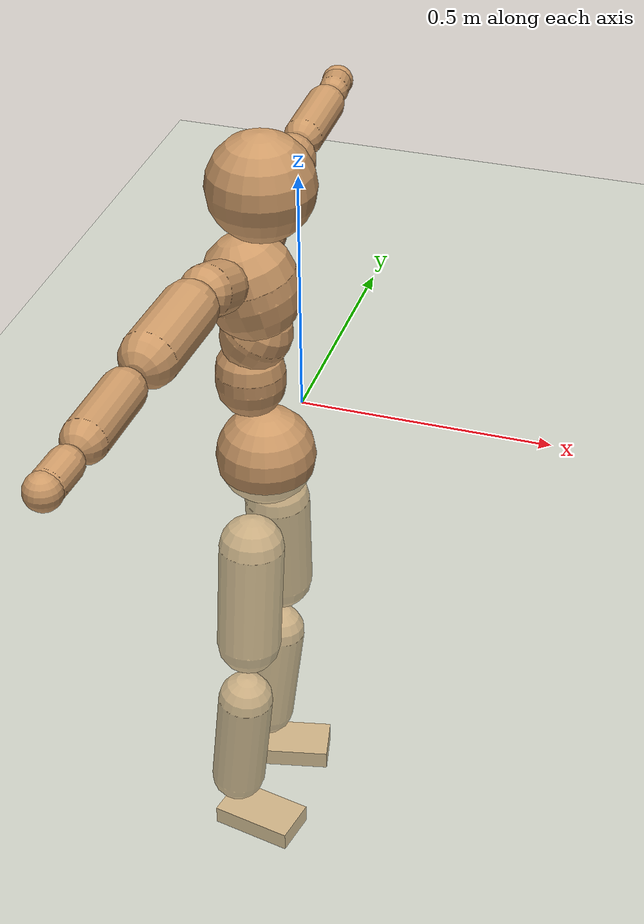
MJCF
<mujoco model="humanoid">
  <compiler coordinate="local"/>
  <default>
    <joint damping="0.0" armature="0.01" stiffness="0.0" limited="true"/>
    <geom conaffinity="1" condim="3" contype="7" margin="0.001" rgba="0.8 0.6 .4 1"/>
  </default>
  <asset>
    <texture type="skybox" builtin="gradient" rgb1=".4 .5 .6" rgb2="0 0 0" width="100" height="100"/>
    <texture builtin="flat" height="1278" mark="cross" markrgb="1 1 1" name="texgeom" random="0.01" rgb1="0.8 0.6 0.4" rgb2="0.8 0.6 0.4" type="cube" width="127"/>
    <texture builtin="checker" height="100" name="texplane" rgb1="0 0 0" rgb2="0.8 0.8 0.8" type="2d" width="100"/>
    <material name="MatPlane" reflectance="0.5" shininess="1" specular="1" texrepeat="60 60" texture="texplane"/>
    <material name="geom" texture="texgeom" texuniform="true"/>
  </asset>
  <worldbody>
    <light cutoff="100" diffuse="1 1 1" dir="-0 0 -1.3" directional="true" exponent="1" pos="0 0 1.3" specular=".1 .1 .1"/>
    <geom conaffinity="1" condim="3" name="floor" pos="0 0 0" rgba="0.8 0.9 0.8 1" size="100 100 .2" type="plane" material="MatPlane"/>
    <body name="Pelvis" pos="-0.0006 -0.217 0.0282">
      <freejoint name="Pelvis"/>
      <geom type="sphere" contype="1" conaffinity="1" density="500" size="0.0950" pos="0.0000 0.0000 0.0000" name="Pelvis"/>
      <body name="L_Hip" pos="-0.008 0.0744 -0.0914">
        <joint name="L_Hip_x" type="hinge" pos="0 0 0" axis="1 0 0" stiffness="800" damping="80" armature="0.02" range="-180.0000 180.0000"/>
        <joint name="L_Hip_y" type="hinge" pos="0 0 0" axis="0 1 0" stiffness="800" damping="80" armature="0.02" range="-180.0000 180.0000"/>
        <joint name="L_Hip_z" type="hinge" pos="0 0 0" axis="0 0 1" stiffness="800" damping="80" armature="0.02" range="-180.0000 180.0000"/>
        <geom type="capsule" contype="1" conaffinity="1" density="500" fromto="-0.0012 0.0062 -0.0733 -0.0047 0.0248 -0.2934" size="0.0639" name="L_Hip"/>
        <body name="L_Knee" pos="-0.0059 0.031 -0.3667">
          <joint name="L_Knee_x" type="hinge" pos="0 0 0" axis="1 0 0" stiffness="800" damping="80" armature="0.02" range="-180.0000 180.0000"/>
          <joint name="L_Knee_y" type="hinge" pos="0 0 0" axis="0 1 0" stiffness="800" damping="80" armature="0.02" range="-180.0000 180.0000"/>
          <joint name="L_Knee_z" type="hinge" pos="0 0 0" axis="0 0 1" stiffness="800" damping="80" armature="0.02" range="-180.0000 180.0000"/>
          <geom type="capsule" contype="1" conaffinity="1" density="500" fromto="-0.0091 -0.0023 -0.0767 -0.0363 -0.0090 -0.3068" size="0.0546" name="L_Knee"/>
          <body name="L_Ankle" pos="-0.0453 -0.0113 -0.3835">
            <joint name="L_Ankle_x" type="hinge" pos="0 0 0" axis="1 0 0" stiffness="800" damping="80" armature="0.02" range="-180.0000 180.0000"/>
            <joint name="L_Ankle_y" type="hinge" pos="0 0 0" axis="0 1 0" stiffness="800" damping="80" armature="0.02" range="-180.0000 180.0000"/>
            <joint name="L_Ankle_z" type="hinge" pos="0 0 0" axis="0 0 1" stiffness="800" damping="80" armature="0.02" range="-180.0000 180.0000"/>
            <geom type="box" contype="1" conaffinity="1" density="500" pos="0.0572 0.0123 -0.0272" size="0.0818 0.0461 0.02" quat="0.9944 0.0000 0.0000 0.1057" name="L_Ankle"/>
            <body name="L_Toe" pos="0.1143 0.0246 -0.0545">
              <joint name="L_Toe_x" type="hinge" pos="0 0 0" axis="1 0 0" stiffness="500" damping="50" armature="0.02" range="-180.0000 180.0000"/>
              <joint name="L_Toe_y" type="hinge" pos="0 0 0" axis="0 1 0" stiffness="500" damping="50" armature="0.02" range="-180.0000 180.0000"/>
              <joint name="L_Toe_z" type="hinge" pos="0 0 0" axis="0 0 1" stiffness="500" damping="50" armature="0.02" range="-180.0000 180.0000"/>
              <geom type="box" contype="1" conaffinity="1" density="500" pos="0.0000 0.0000 0.0271" size="0.0009 0.0023 0.001" quat="0.9937 0.0000 0.0000 0.1121" name="L_Toe"/>
            </body>
          </body>
        </body>
      </body>
      <body name="R_Hip" pos="-0.005 -0.0718 -0.0905">
        <joint name="R_Hip_x" type="hinge" pos="0 0 0" axis="1 0 0" stiffness="800" damping="80" armature="0.02" range="-180.0000 180.0000"/>
        <joint name="R_Hip_y" type="hinge" pos="0 0 0" axis="0 1 0" stiffness="800" damping="80" armature="0.02" range="-180.0000 180.0000"/>
        <joint name="R_Hip_z" type="hinge" pos="0 0 0" axis="0 0 1" stiffness="800" damping="80" armature="0.02" range="-180.0000 180.0000"/>
        <geom type="capsule" contype="1" conaffinity="1" density="500" fromto="-0.0017 -0.0073 -0.0748 -0.0069 -0.0292 -0.2992" size="0.0631" name="R_Hip"/>
        <body name="R_Knee" pos="-0.0086 -0.0366 -0.374">
          <joint name="R_Knee_x" type="hinge" pos="0 0 0" axis="1 0 0" stiffness="800" damping="80" armature="0.02" range="-180.0000 180.0000"/>
          <joint name="R_Knee_y" type="hinge" pos="0 0 0" axis="0 1 0" stiffness="800" damping="80" armature="0.02" range="-180.0000 180.0000"/>
          <joint name="R_Knee_z" type="hinge" pos="0 0 0" axis="0 0 1" stiffness="800" damping="80" armature="0.02" range="-180.0000 180.0000"/>
          <geom type="capsule" contype="1" conaffinity="1" density="500" fromto="-0.0087 0.0027 -0.0768 -0.0350 0.0110 -0.3072" size="0.0548" name="R_Knee"/>
          <body name="R_Ankle" pos="-0.0437 0.0137 -0.384">
            <joint name="R_Ankle_x" type="hinge" pos="0 0 0" axis="1 0 0" stiffness="800" damping="80" armature="0.02" range="-180.0000 180.0000"/>
            <joint name="R_Ankle_y" type="hinge" pos="0 0 0" axis="0 1 0" stiffness="800" damping="80" armature="0.02" range="-180.0000 180.0000"/>
            <joint name="R_Ankle_z" type="hinge" pos="0 0 0" axis="0 0 1" stiffness="800" damping="80" armature="0.02" range="-180.0000 180.0000"/>
            <geom type="box" contype="1" conaffinity="1" density="500" pos="0.0589 -0.0115 -0.0235" size="0.0827 0.0458 0.02" quat="0.9954 0.0000 0.0000 -0.0961" name="R_Ankle"/>
            <body name="R_Toe" pos="0.1178 -0.023 -0.047">
              <joint name="R_Toe_x" type="hinge" pos="0 0 0" axis="1 0 0" stiffness="500" damping="50" armature="0.02" range="-180.0000 180.0000"/>
              <joint name="R_Toe_y" type="hinge" pos="0 0 0" axis="0 1 0" stiffness="500" damping="50" armature="0.02" range="-180.0000 180.0000"/>
              <joint name="R_Toe_z" type="hinge" pos="0 0 0" axis="0 0 1" stiffness="500" damping="50" armature="0.02" range="-180.0000 180.0000"/>
              <geom type="box" contype="1" conaffinity="1" density="500" pos="0.0000 0.0000 0.0253" size="0.0009 0.0023 0.0011" quat="0.9963 0.0000 0.0000 -0.0865" name="R_Toe"/>
            </body>
          </body>
        </body>
      </body>
      <body name="Torso" pos="-0.0232 -0.0025 0.1054">
        <joint name="Torso_x" type="hinge" pos="0 0 0" axis="1 0 0" stiffness="1000" damping="100" armature="0.02" range="-180.0000 180.0000"/>
        <joint name="Torso_y" type="hinge" pos="0 0 0" axis="0 1 0" stiffness="1000" damping="100" armature="0.02" range="-180.0000 180.0000"/>
        <joint name="Torso_z" type="hinge" pos="0 0 0" axis="0 0 1" stiffness="1000" damping="100" armature="0.02" range="-180.0000 180.0000"/>
        <geom type="capsule" contype="1" conaffinity="1" density="500" fromto="-0.0019 0.0022 0.0795 -0.0013 0.0015 0.0530" size="0.065472" name="Torso"/>
        <body name="Spine" pos="-0.0031 0.0037 0.1325">
          <joint name="Spine_x" type="hinge" pos="0 0 0" axis="1 0 0" stiffness="1000" damping="100" armature="0.02" range="-180.0000 180.0000"/>
          <joint name="Spine_y" type="hinge" pos="0 0 0" axis="0 1 0" stiffness="1000" damping="100" armature="0.02" range="-180.0000 180.0000"/>
          <joint name="Spine_z" type="hinge" pos="0 0 0" axis="0 0 1" stiffness="1000" damping="100" armature="0.02" range="-180.0000 180.0000"/>
          <geom type="capsule" contype="1" conaffinity="1" density="500" fromto="0.0172 0.0009 0.0300 0.0115 0.0006 0.0200" size="0.065286" name="Spine"/>
          <body name="Chest" pos="0.0287 0.0015 0.0499">
            <joint name="Chest_x" type="hinge" pos="0 0 0" axis="1 0 0" stiffness="1000" damping="100" armature="0.02" range="-180.0000 180.0000"/>
            <joint name="Chest_y" type="hinge" pos="0 0 0" axis="0 1 0" stiffness="1000" damping="100" armature="0.02" range="-180.0000 180.0000"/>
            <joint name="Chest_z" type="hinge" pos="0 0 0" axis="0 0 1" stiffness="1000" damping="100" armature="0.02" range="-180.0000 180.0000"/>
            <geom type="capsule" contype="1" conaffinity="1" density="500" fromto="-0.0250 -0.0008 0.0887 -0.0167 -0.0005 0.0591" size="0.086769" name="Chest"/>
            <body name="Neck" pos="-0.0484 -0.0023 0.2101">
              <joint name="Neck_x" type="hinge" pos="0 0 0" axis="1 0 0" stiffness="500" damping="50" armature="0.02" range="-180.0000 180.0000"/>
              <joint name="Neck_y" type="hinge" pos="0 0 0" axis="0 1 0" stiffness="500" damping="50" armature="0.02" range="-180.0000 180.0000"/>
              <joint name="Neck_z" type="hinge" pos="0 0 0" axis="0 0 1" stiffness="500" damping="50" armature="0.02" range="-180.0000 180.0000"/>
              <geom type="capsule" contype="1" conaffinity="1" density="500" fromto="0.0101 0.0008 0.0129 0.0405 0.0031 0.0517" size="0.037758" name="Neck"/>
              <body name="Head" pos="0.0507 0.0038 0.0647">
                <joint name="Head_x" type="hinge" pos="0 0 0" axis="1 0 0" stiffness="500" damping="50" armature="0.02" range="-180.0000 180.0000"/>
                <joint name="Head_y" type="hinge" pos="0 0 0" axis="0 1 0" stiffness="500" damping="50" armature="0.02" range="-180.0000 180.0000"/>
                <joint name="Head_z" type="hinge" pos="0 0 0" axis="0 0 1" stiffness="500" damping="50" armature="0.02" range="-180.0000 180.0000"/>
                <geom type="sphere" contype="1" conaffinity="1" density="500" size="0.0983" pos="0.0000 0.0000 0.0000" name="Head"/>
              </body>
            </body>
            <body name="L_Thorax" pos="-0.0355 0.074 0.1176">
              <joint name="L_Thorax_x" type="hinge" pos="0 0 0" axis="1 0 0" stiffness="500" damping="50" armature="0.02" range="-180.0000 180.0000"/>
              <joint name="L_Thorax_y" type="hinge" pos="0 0 0" axis="0 1 0" stiffness="500" damping="50" armature="0.02" range="-180.0000 180.0000"/>
              <joint name="L_Thorax_z" type="hinge" pos="0 0 0" axis="0 0 1" stiffness="500" damping="50" armature="0.02" range="-180.0000 180.0000"/>
              <geom type="capsule" contype="1" conaffinity="1" density="500" fromto="-0.0014 0.0167 0.0064 -0.0057 0.0669 0.0254" size="0.0494" name="L_Thorax"/>
              <body name="L_Shoulder" pos="-0.0071 0.0836 0.0318">
                <joint name="L_Shoulder_x" type="hinge" pos="0 0 0" axis="1 0 0" stiffness="500" damping="50" armature="0.02" range="-720.0000 720.0000"/>
                <joint name="L_Shoulder_y" type="hinge" pos="0 0 0" axis="0 1 0" stiffness="500" damping="50" armature="0.02" range="-720.0000 720.0000"/>
                <joint name="L_Shoulder_z" type="hinge" pos="0 0 0" axis="0 0 1" stiffness="500" damping="50" armature="0.02" range="-720.0000 720.0000"/>
                <geom type="capsule" contype="1" conaffinity="1" density="500" fromto="-0.0055 0.0494 -0.0025 -0.0222 0.1977 -0.0098" size="0.0505" name="L_Shoulder"/>
                <body name="L_Elbow" pos="-0.0277 0.2471 -0.0123">
                  <joint name="L_Elbow_x" type="hinge" pos="0 0 0" axis="1 0 0" stiffness="500" damping="50" armature="0.02" range="-720.0000 720.0000"/>
                  <joint name="L_Elbow_y" type="hinge" pos="0 0 0" axis="0 1 0" stiffness="500" damping="50" armature="0.02" range="-720.0000 720.0000"/>
                  <joint name="L_Elbow_z" type="hinge" pos="0 0 0" axis="0 0 1" stiffness="500" damping="50" armature="0.02" range="-720.0000 720.0000"/>
                  <geom type="capsule" contype="1" conaffinity="1" density="500" fromto="0.0001 0.0472 0.0018 0.0004 0.1886 0.0070" size="0.0389" name="L_Elbow"/>
                  <body name="L_Wrist" pos="0.0005 0.2358 0.0088">
                    <joint name="L_Wrist_x" type="hinge" pos="0 0 0" axis="1 0 0" stiffness="300" damping="30" armature="0.02" range="-180.0000 180.0000"/>
                    <joint name="L_Wrist_y" type="hinge" pos="0 0 0" axis="0 1 0" stiffness="300" damping="30" armature="0.02" range="-180.0000 180.0000"/>
                    <joint name="L_Wrist_z" type="hinge" pos="0 0 0" axis="0 0 1" stiffness="300" damping="30" armature="0.02" range="-180.0000 180.0000"/>
                    <geom type="capsule" contype="1" conaffinity="1" density="500" fromto="-0.0026 0.0157 -0.0019 -0.0104 0.0630 -0.0077" size="0.0299" name="L_Wrist"/>
                    <body name="L_Hand" pos="-0.013 0.0787 -0.0096">
                      <joint name="L_Hand_x" type="hinge" pos="0 0 0" axis="1 0 0" stiffness="300" damping="30" armature="0.02" range="-180.0000 180.0000"/>
                      <joint name="L_Hand_y" type="hinge" pos="0 0 0" axis="0 1 0" stiffness="300" damping="30" armature="0.02" range="-180.0000 180.0000"/>
                      <joint name="L_Hand_z" type="hinge" pos="0 0 0" axis="0 0 1" stiffness="300" damping="30" armature="0.02" range="-180.0000 180.0000"/>
                      <geom type="sphere" contype="1" conaffinity="1" density="500" size="0.0318" pos="0.0000 0.0000 0.0000" name="L_Hand"/>
                    </body>
                  </body>
                </body>
              </body>
            </body>
            <body name="R_Thorax" pos="-0.0411 -0.0757 0.1156">
              <joint name="R_Thorax_x" type="hinge" pos="0 0 0" axis="1 0 0" stiffness="500" damping="50" armature="0.02" range="-180.0000 180.0000"/>
              <joint name="R_Thorax_y" type="hinge" pos="0 0 0" axis="0 1 0" stiffness="500" damping="50" armature="0.02" range="-180.0000 180.0000"/>
              <joint name="R_Thorax_z" type="hinge" pos="0 0 0" axis="0 0 1" stiffness="500" damping="50" armature="0.02" range="-180.0000 180.0000"/>
              <geom type="capsule" contype="1" conaffinity="1" density="500" fromto="-0.0018 -0.0175 0.0066 -0.0072 -0.0700 0.0262" size="0.0482" name="R_Thorax"/>
              <body name="R_Shoulder" pos="-0.0091 -0.0875 0.0328">
                <joint name="R_Shoulder_x" type="hinge" pos="0 0 0" axis="1 0 0" stiffness="500" damping="50" armature="0.02" range="-720.0000 720.0000"/>
                <joint name="R_Shoulder_y" type="hinge" pos="0 0 0" axis="0 1 0" stiffness="500" damping="50" armature="0.02" range="-720.0000 720.0000"/>
                <joint name="R_Shoulder_z" type="hinge" pos="0 0 0" axis="0 0 1" stiffness="500" damping="50" armature="0.02" range="-720.0000 720.0000"/>
                <geom type="capsule" contype="1" conaffinity="1" density="500" fromto="-0.0043 -0.0485 -0.0026 -0.0170 -0.1940 -0.0104" size="0.0515" name="R_Shoulder"/>
                <body name="R_Elbow" pos="-0.0213 -0.2424 -0.013">
                  <joint name="R_Elbow_x" type="hinge" pos="0 0 0" axis="1 0 0" stiffness="500" damping="50" armature="0.02" range="-720.0000 720.0000"/>
                  <joint name="R_Elbow_y" type="hinge" pos="0 0 0" axis="0 1 0" stiffness="500" damping="50" armature="0.02" range="-720.0000 720.0000"/>
                  <joint name="R_Elbow_z" type="hinge" pos="0 0 0" axis="0 0 1" stiffness="500" damping="50" armature="0.02" range="-720.0000 720.0000"/>
                  <geom type="capsule" contype="1" conaffinity="1" density="500" fromto="-0.0007 -0.0485 0.0016 -0.0026 -0.1939 0.0065" size="0.0389" name="R_Elbow"/>
                  <body name="R_Wrist" pos="-0.0033 -0.2423 0.0081">
                    <joint name="R_Wrist_x" type="hinge" pos="0 0 0" axis="1 0 0" stiffness="300" damping="30" armature="0.02" range="-180.0000 180.0000"/>
                    <joint name="R_Wrist_y" type="hinge" pos="0 0 0" axis="0 1 0" stiffness="300" damping="30" armature="0.02" range="-180.0000 180.0000"/>
                    <joint name="R_Wrist_z" type="hinge" pos="0 0 0" axis="0 0 1" stiffness="300" damping="30" armature="0.02" range="-180.0000 180.0000"/>
                    <geom type="capsule" contype="1" conaffinity="1" density="500" fromto="-0.0020 -0.0158 -0.0014 -0.0082 -0.0632 -0.0057" size="0.0304" name="R_Wrist"/>
                    <body name="R_Hand" pos="-0.0102 -0.079 -0.0071">
                      <joint name="R_Hand_x" type="hinge" pos="0 0 0" axis="1 0 0" stiffness="300" damping="30" armature="0.02" range="-180.0000 180.0000"/>
                      <joint name="R_Hand_y" type="hinge" pos="0 0 0" axis="0 1 0" stiffness="300" damping="30" armature="0.02" range="-180.0000 180.0000"/>
                      <joint name="R_Hand_z" type="hinge" pos="0 0 0" axis="0 0 1" stiffness="300" damping="30" armature="0.02" range="-180.0000 180.0000"/>
                      <geom type="sphere" contype="1" conaffinity="1" density="500" size="0.0318" pos="0.0000 0.0000 0.0000" name="R_Hand"/>
                    </body>
                  </body>
                </body>
              </body>
            </body>
          </body>
        </body>
      </body>
    </body>
  </worldbody>
  <actuator>
    <motor name="L_Hip_x" joint="L_Hip_x" gear="500"/>
    <motor name="L_Hip_y" joint="L_Hip_y" gear="500"/>
    <motor name="L_Hip_z" joint="L_Hip_z" gear="500"/>
    <motor name="L_Knee_x" joint="L_Knee_x" gear="500"/>
    <motor name="L_Knee_y" joint="L_Knee_y" gear="500"/>
    <motor name="L_Knee_z" joint="L_Knee_z" gear="500"/>
    <motor name="L_Ankle_x" joint="L_Ankle_x" gear="500"/>
    <motor name="L_Ankle_y" joint="L_Ankle_y" gear="500"/>
    <motor name="L_Ankle_z" joint="L_Ankle_z" gear="500"/>
    <motor name="L_Toe_x" joint="L_Toe_x" gear="500"/>
    <motor name="L_Toe_y" joint="L_Toe_y" gear="500"/>
    <motor name="L_Toe_z" joint="L_Toe_z" gear="500"/>
    <motor name="R_Hip_x" joint="R_Hip_x" gear="500"/>
    <motor name="R_Hip_y" joint="R_Hip_y" gear="500"/>
    <motor name="R_Hip_z" joint="R_Hip_z" gear="500"/>
    <motor name="R_Knee_x" joint="R_Knee_x" gear="500"/>
    <motor name="R_Knee_y" joint="R_Knee_y" gear="500"/>
    <motor name="R_Knee_z" joint="R_Knee_z" gear="500"/>
    <motor name="R_Ankle_x" joint="R_Ankle_x" gear="500"/>
    <motor name="R_Ankle_y" joint="R_Ankle_y" gear="500"/>
    <motor name="R_Ankle_z" joint="R_Ankle_z" gear="500"/>
    <motor name="R_Toe_x" joint="R_Toe_x" gear="500"/>
    <motor name="R_Toe_y" joint="R_Toe_y" gear="500"/>
    <motor name="R_Toe_z" joint="R_Toe_z" gear="500"/>
    <motor name="Torso_x" joint="Torso_x" gear="500"/>
    <motor name="Torso_y" joint="Torso_y" gear="500"/>
    <motor name="Torso_z" joint="Torso_z" gear="500"/>
    <motor name="Spine_x" joint="Spine_x" gear="500"/>
    <motor name="Spine_y" joint="Spine_y" gear="500"/>
    <motor name="Spine_z" joint="Spine_z" gear="500"/>
    <motor name="Chest_x" joint="Chest_x" gear="500"/>
    <motor name="Chest_y" joint="Chest_y" gear="500"/>
    <motor name="Chest_z" joint="Chest_z" gear="500"/>
    <motor name="Neck_x" joint="Neck_x" gear="500"/>
    <motor name="Neck_y" joint="Neck_y" gear="500"/>
    <motor name="Neck_z" joint="Neck_z" gear="500"/>
    <motor name="Head_x" joint="Head_x" gear="500"/>
    <motor name="Head_y" joint="Head_y" gear="500"/>
    <motor name="Head_z" joint="Head_z" gear="500"/>
    <motor name="L_Thorax_x" joint="L_Thorax_x" gear="500"/>
    <motor name="L_Thorax_y" joint="L_Thorax_y" gear="500"/>
    <motor name="L_Thorax_z" joint="L_Thorax_z" gear="500"/>
    <motor name="L_Shoulder_x" joint="L_Shoulder_x" gear="500"/>
    <motor name="L_Shoulder_y" joint="L_Shoulder_y" gear="500"/>
    <motor name="L_Shoulder_z" joint="L_Shoulder_z" gear="500"/>
    <motor name="L_Elbow_x" joint="L_Elbow_x" gear="500"/>
    <motor name="L_Elbow_y" joint="L_Elbow_y" gear="500"/>
    <motor name="L_Elbow_z" joint="L_Elbow_z" gear="500"/>
    <motor name="L_Wrist_x" joint="L_Wrist_x" gear="500"/>
    <motor name="L_Wrist_y" joint="L_Wrist_y" gear="500"/>
    <motor name="L_Wrist_z" joint="L_Wrist_z" gear="500"/>
    <motor name="L_Hand_x" joint="L_Hand_x" gear="500"/>
    <motor name="L_Hand_y" joint="L_Hand_y" gear="500"/>
    <motor name="L_Hand_z" joint="L_Hand_z" gear="500"/>
    <motor name="R_Thorax_x" joint="R_Thorax_x" gear="500"/>
    <motor name="R_Thorax_y" joint="R_Thorax_y" gear="500"/>
    <motor name="R_Thorax_z" joint="R_Thorax_z" gear="500"/>
    <motor name="R_Shoulder_x" joint="R_Shoulder_x" gear="500"/>
    <motor name="R_Shoulder_y" joint="R_Shoulder_y" gear="500"/>
    <motor name="R_Shoulder_z" joint="R_Shoulder_z" gear="500"/>
    <motor name="R_Elbow_x" joint="R_Elbow_x" gear="500"/>
    <motor name="R_Elbow_y" joint="R_Elbow_y" gear="500"/>
    <motor name="R_Elbow_z" joint="R_Elbow_z" gear="500"/>
    <motor name="R_Wrist_x" joint="R_Wrist_x" gear="500"/>
    <motor name="R_Wrist_y" joint="R_Wrist_y" gear="500"/>
    <motor name="R_Wrist_z" joint="R_Wrist_z" gear="500"/>
    <motor name="R_Hand_x" joint="R_Hand_x" gear="500"/>
    <motor name="R_Hand_y" joint="R_Hand_y" gear="500"/>
    <motor name="R_Hand_z" joint="R_Hand_z" gear="500"/>
  </actuator>
  <contact>
    <exclude body1="Torso" body2="Chest"/>
    <exclude body1="Head" body2="Chest"/>
    <exclude body1="R_Knee" body2="R_Toe"/>
    <exclude body1="R_Knee" body2="L_Ankle"/>
    <exclude body1="R_Knee" body2="L_Toe"/>
    <exclude body1="L_Knee" body2="L_Toe"/>
    <exclude body1="L_Knee" body2="R_Ankle"/>
    <exclude body1="L_Knee" body2="R_Toe"/>
    <exclude body1="L_Shoulder" body2="Chest"/>
    <exclude body1="R_Shoulder" body2="Chest"/>
  </contact>
  <sensor/>
  <size njmax="700" nconmax="700"/>
</mujoco>
